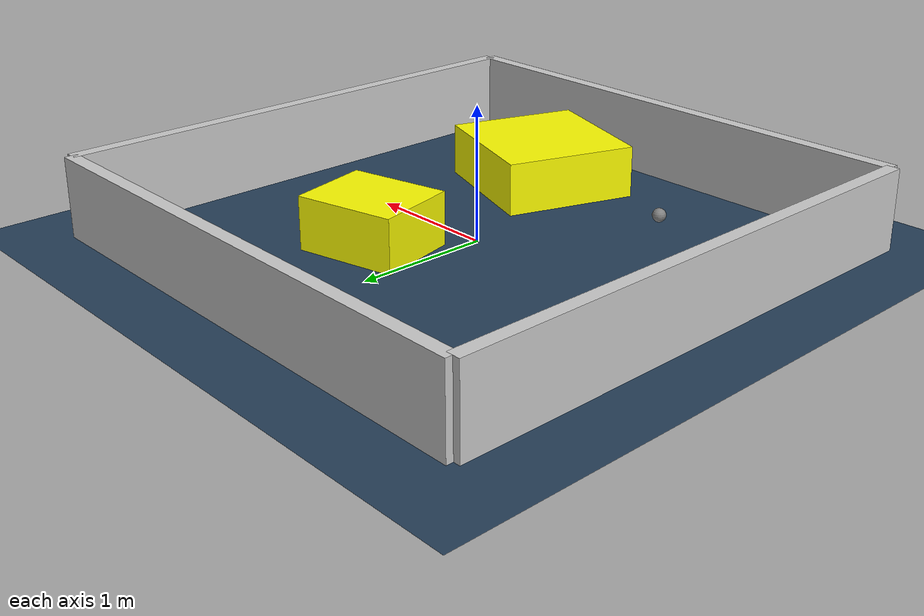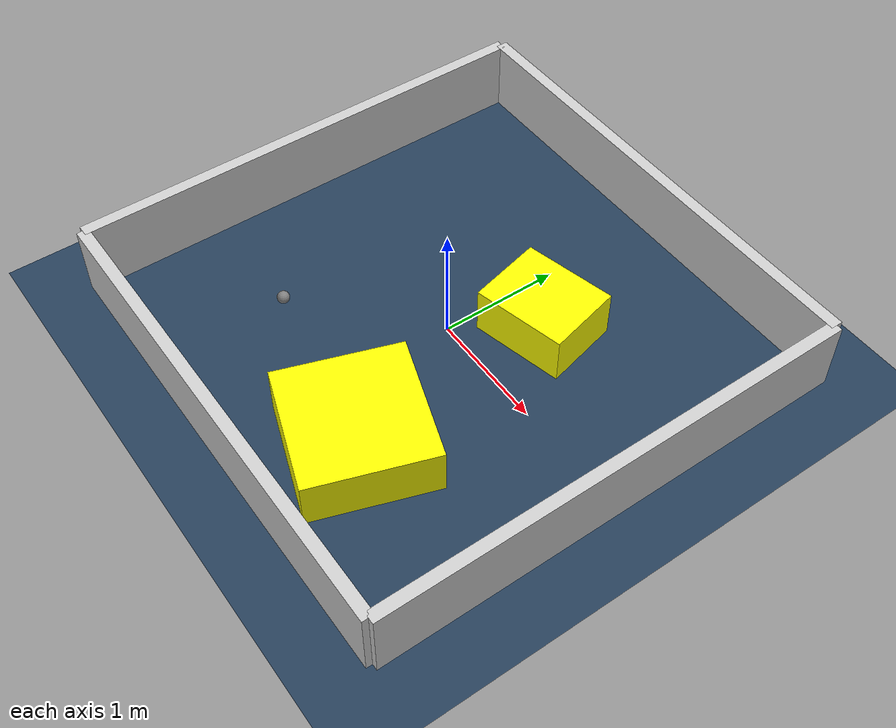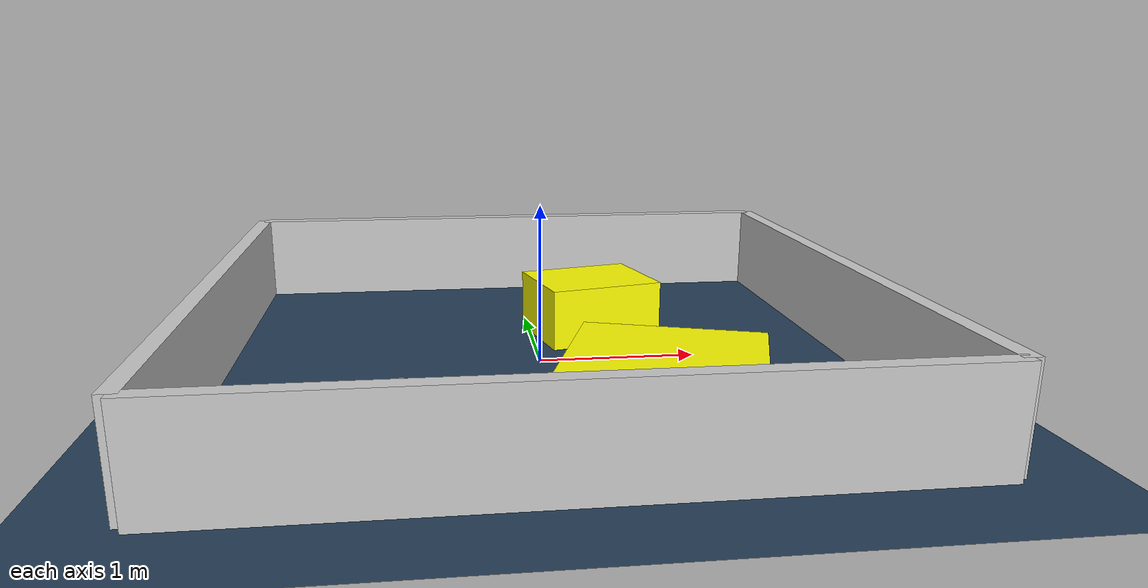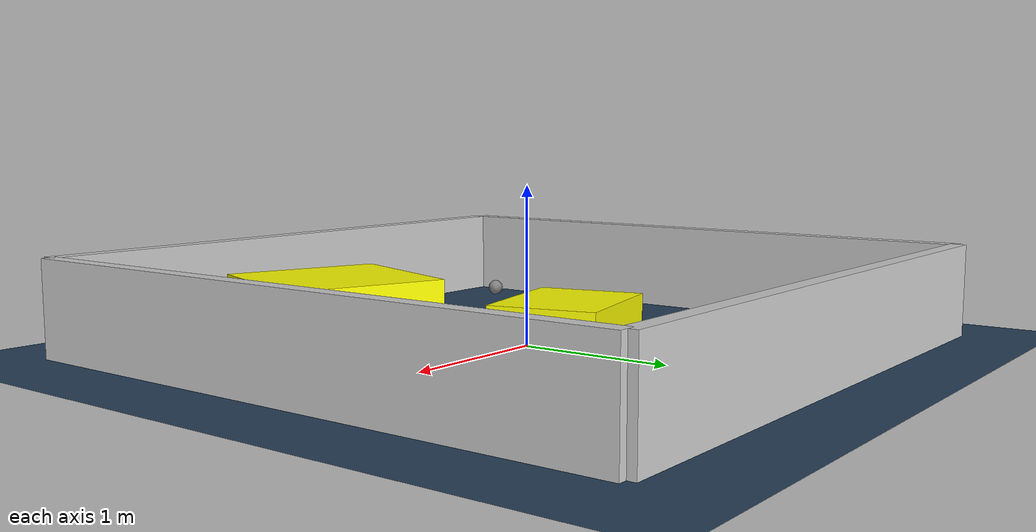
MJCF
<?xml version="1.0" ?>
<mujoco model="generated_environment">
  <option timestep="0.01" integrator="RK4" cone="elliptic"/>
  <default>
    <geom density="1"/>
  </default>
  <asset>
    <texture builtin="gradient" height="3072" rgb1="0.3 0.5 0.7" rgb2="0 0 0" type="skybox" width="512"/>
    <texture builtin="checker" height="300" mark="edge" markrgb="0.8 0.8 0.8" name="groundplane" rgb1="0.2 0.3 0.4" rgb2="0.1 0.2 0.3" type="2d" width="300"/>
    <material name="groundplane" reflectance="0.2" texrepeat="5 5" texture="groundplane" texuniform="true"/>
    <material name="robot" rgba="0.0 1.0 0.0 1"/>
  </asset>
  <worldbody>
    <light dir="0 0 -1" directional="true" pos="0 0 1.5"/>
    <geom condim="4" friction="1.0 0.005 0.001" material="groundplane" name="floor" size="0 0 0.05" type="plane"/>
    <body name="walls">
      <geom name="wall_1" condim="4" pos="-2.0 0.0 0.3" rgba="0.800000011920929 0.800000011920929 0.800000011920929 1.0" size="0.05 2.0 0.3" type="box"/>
      <geom name="wall_2" condim="4" pos="2.0 0.0 0.3" rgba="0.800000011920929 0.800000011920929 0.800000011920929 1.0" size="0.05 2.0 0.3" type="box"/>
      <geom name="wall_3" condim="4" pos="0.0 -2.0 0.3" rgba="0.800000011920929 0.800000011920929 0.800000011920929 1.0" size="2.0 0.05 0.3" type="box"/>
      <geom name="wall_4" condim="4" pos="0.0 2.0 0.3" rgba="0.800000011920929 0.800000011920929 0.800000011920929 1.0" size="2.0 0.05 0.3" type="box"/>
    </body>
    <body name="robot">
      <joint name="joint_x" type="slide" pos="0 0 0" axis="1 0 0"/>
      <joint name="joint_y" type="slide" pos="0 0 0" axis="0 1 0"/>
      <geom name="robot" type="sphere" pos="-0.8583008391998754 -0.9404056768446803 0.2" size="0.05" mass="5." friction="1.0 0.005 0.0001" condim="4"/>
      <site name="sensor_ball"/>
    </body>
    <body name="obstacle_1_movable">
      <geom name="obstacle_1_movable" condim="4" pos="0.417850772581573 0.5970982242225129 0.2" euler="0 0 103.52647640788183" friction="1.0 0.005 0.001" rgba="1 1 0 1" size="0.3167168330592824 0.38850069139333787 0.2" type="box" mass="0.1"/>
      <joint type="free"/>
    </body>
    <body name="obstacle_2_movable">
      <geom name="obstacle_2_movable" condim="4" pos="0.5259297861047791 -1.1650339760133472 0.2" euler="0 0 251.1386697422552" friction="1.0 0.005 0.001" rgba="1 1 0 1" size="0.5107579219728593 0.5247778481004981 0.2" type="box" mass="0.1"/>
      <joint type="free"/>
    </body>
  </worldbody>
  <actuator>
    <motor name="actuator_x" joint="joint_x" gear="1" ctrlrange="-1 1"/>
    <motor name="actuator_y" joint="joint_y" gear="1" ctrlrange="-1 1"/>
  </actuator>
</mujoco>
